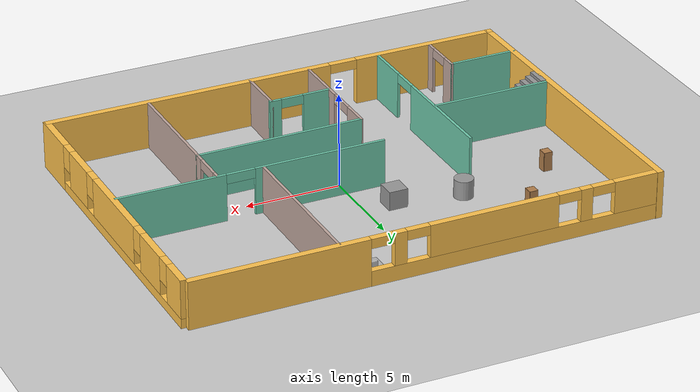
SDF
<sdf version="1.4">
 <world name="default">
  <include><uri>model://sun</uri></include>
  <include><uri>model://ground_plane</uri></include>
  <physics type="ode">
   <real_time_update_rate>1000.0</real_time_update_rate>
   <max_step_size>0.001</max_step_size>
   <real_time_factor>1</real_time_factor>
   <ode>
    <solver>
     <type>quick</type>
     <iters>150</iters>
     <precon_iters>0</precon_iters>
     <sor>1.400000</sor>
     <use_dynamic_moi_rescaling>1</use_dynamic_moi_rescaling>
    </solver>
    <constraints>
     <cfm>0.00001</cfm>
     <erp>0.2</erp>
     <contact_max_correcting_vel>2000.000000</contact_max_correcting_vel>
     <contact_surface_layer>0.01000</contact_surface_layer>
    </constraints>
   </ode>
  </physics>
  <scene><ambient>0.4 0.4 0.4 1</ambient><background>0.7 0.7 0.7 1</background><shadows>false</shadows></scene>
  <include><uri>model://Building</uri></include>
  <include>
   <name>Lsahpedsofa1</name>
   <pose>1.818159 8.511688 0 0 0 0</pose>
   <uri>model://waitingseat</uri>
  </include>
  <model name="unit_box">
   <pose>-1.58816 2.88343 0.5 0 -0 0</pose>
   <link name="link">
    <inertial>
     <mass>1</mass>
     <inertia>
      <ixx>0.166667</ixx>
      <ixy>0</ixy>
      <ixz>0</ixz>
      <iyy>0.166667</iyy>
      <iyz>0</iyz>
      <izz>0.166667</izz>
     </inertia>
    </inertial>
    <collision name="collision"><geometry><box><size>1 1 1</size></box></geometry></collision>
    <visual name="visual">
     <geometry><box><size>1 1 1</size></box></geometry>
     <material>
      <script><name>Gazebo/Grey</name><uri>file://media/materials/scripts/gazebo.material</uri></script>
     </material>
    </visual>
   </link>
  </model>
  <model name="unit_cylinder">
   <pose>-5.03093 3.57637 0.5 0 -0 0</pose>
   <link name="link">
    <inertial>
     <mass>1</mass>
     <inertia><ixx>0.145833</ixx><ixy>0</ixy><ixz>0</ixz><iyy>0.145833</iyy><iyz>0</iyz><izz>0.125</izz></inertia>
    </inertial>
    <collision name="collision">
     <geometry><cylinder><radius>0.5</radius><length>1</length></cylinder></geometry>
    </collision>
    <visual name="visual">
     <geometry><cylinder><radius>0.5</radius><length>1</length></cylinder></geometry>
     <material>
      <script><name>Gazebo/Grey</name><uri>file://media/materials/scripts/gazebo.material</uri></script>
     </material>
    </visual>
   </link>
  </model>
  <model name="cabinet">
   <static>1</static>
   <link name="cabinet_bottom_plate">
    <inertial>
     <pose>0 0 -1 0 -0 0</pose>
     <inertia><ixx>2.05</ixx><ixy>0</ixy><ixz>0</ixz><iyy>2.05</iyy><iyz>0</iyz><izz>2.05</izz></inertia>
     <mass>25</mass>
    </inertial>
    <collision name="cabinet_bottom_plate_geom">
     <pose>0 0 0.01 0 -0 0</pose>
     <geometry><box><size>0.45 0.45 0.02</size></box></geometry>
    </collision>
    <visual name="cabinet_bottom_plate_geom_visual">
     <pose>0 0 0.01 0 -0 0</pose>
     <geometry><box><size>0.45 0.45 0.02</size></box></geometry>
     <material>
      <script><uri>file://media/materials/scripts/gazebo.material</uri><name>Gazebo/Wood</name></script>
     </material>
    </visual>
    <collision name="cabinet_bottom_plate_geom_cabinet_back_plate">
     <pose>0.235 0 0.51 0 -0 0</pose>
     <geometry><box><size>0.02 0.45 1.02</size></box></geometry>
    </collision>
    <visual name="cabinet_bottom_plate_geom_cabinet_back_plate_visual">
     <pose>0.235 0 0.51 0 -0 0</pose>
     <geometry><box><size>0.02 0.45 1.02</size></box></geometry>
     <material>
      <script><uri>file://media/materials/scripts/gazebo.material</uri><name>Gazebo/Wood</name></script>
     </material>
    </visual>
    <collision name="cabinet_bottom_plate_geom_cabinet_left_plate">
     <pose>0 0.235 0.51 0 -0 0</pose>
     <geometry><box><size>0.45 0.02 1.02</size></box></geometry>
    </collision>
    <visual name="cabinet_bottom_plate_geom_cabinet_left_plate_visual">
     <pose>0 0.235 0.51 0 -0 0</pose>
     <geometry><box><size>0.45 0.02 1.02</size></box></geometry>
     <material>
      <script><uri>file://media/materials/scripts/gazebo.material</uri><name>Gazebo/Wood</name></script>
     </material>
    </visual>
    <collision name="cabinet_bottom_plate_geom_cabinet_middle_plate">
     <pose>0 0 0.51 0 -0 0</pose>
     <geometry><box><size>0.45 0.45 0.02</size></box></geometry>
    </collision>
    <visual name="cabinet_bottom_plate_geom_cabinet_middle_plate_visual">
     <pose>0 0 0.51 0 -0 0</pose>
     <geometry><box><size>0.45 0.45 0.02</size></box></geometry>
     <material>
      <script><uri>file://media/materials/scripts/gazebo.material</uri><name>Gazebo/Wood</name></script>
     </material>
    </visual>
    <collision name="cabinet_bottom_plate_geom_cabinet_right_plate">
     <pose>0 -0.235 0.51 0 -0 0</pose>
     <geometry><box><size>0.45 0.02 1.02</size></box></geometry>
    </collision>
    <visual name="cabinet_bottom_plate_geom_cabinet_right_plate_visual">
     <pose>0 -0.235 0.51 0 -0 0</pose>
     <geometry><box><size>0.45 0.02 1.02</size></box></geometry>
     <material>
      <script><uri>file://media/materials/scripts/gazebo.material</uri><name>Gazebo/Wood</name></script>
     </material>
    </visual>
    <collision name="cabinet_bottom_plate_geom_cabinet_top_plate">
     <pose>0 0 1.01 0 -0 0</pose>
     <geometry><box><size>0.45 0.45 0.02</size></box></geometry>
    </collision>
    <visual name="cabinet_bottom_plate_geom_cabinet_top_plate_visual">
     <pose>0 0 1.01 0 -0 0</pose>
     <geometry><box><size>0.45 0.45 0.02</size></box></geometry>
     <material>
      <script><uri>file://media/materials/scripts/gazebo.material</uri><name>Gazebo/Wood</name></script>
     </material>
    </visual>
   </link>
   <pose>-7.45917 6.0449 0 0 -0 0</pose>
  </model>
  <model name="cabinet_0">
   <static>1</static>
   <link name="cabinet_bottom_plate">
    <inertial>
     <pose>0 0 -1 0 -0 0</pose>
     <inertia><ixx>2.05</ixx><ixy>0</ixy><ixz>0</ixz><iyy>2.05</iyy><iyz>0</iyz><izz>2.05</izz></inertia>
     <mass>25</mass>
    </inertial>
    <collision name="cabinet_bottom_plate_geom">
     <pose>0 0 0.01 0 -0 0</pose>
     <geometry><box><size>0.45 0.45 0.02</size></box></geometry>
    </collision>
    <visual name="cabinet_bottom_plate_geom_visual">
     <pose>0 0 0.01 0 -0 0</pose>
     <geometry><box><size>0.45 0.45 0.02</size></box></geometry>
     <material>
      <script><uri>file://media/materials/scripts/gazebo.material</uri><name>Gazebo/Wood</name></script>
     </material>
    </visual>
    <collision name="cabinet_bottom_plate_geom_cabinet_back_plate">
     <pose>0.235 0 0.51 0 -0 0</pose>
     <geometry><box><size>0.02 0.45 1.02</size></box></geometry>
    </collision>
    <visual name="cabinet_bottom_plate_geom_cabinet_back_plate_visual">
     <pose>0.235 0 0.51 0 -0 0</pose>
     <geometry><box><size>0.02 0.45 1.02</size></box></geometry>
     <material>
      <script><uri>file://media/materials/scripts/gazebo.material</uri><name>Gazebo/Wood</name></script>
     </material>
    </visual>
    <collision name="cabinet_bottom_plate_geom_cabinet_left_plate">
     <pose>0 0.235 0.51 0 -0 0</pose>
     <geometry><box><size>0.45 0.02 1.02</size></box></geometry>
    </collision>
    <visual name="cabinet_bottom_plate_geom_cabinet_left_plate_visual">
     <pose>0 0.235 0.51 0 -0 0</pose>
     <geometry><box><size>0.45 0.02 1.02</size></box></geometry>
     <material>
      <script><uri>file://media/materials/scripts/gazebo.material</uri><name>Gazebo/Wood</name></script>
     </material>
    </visual>
    <collision name="cabinet_bottom_plate_geom_cabinet_middle_plate">
     <pose>0 0 0.51 0 -0 0</pose>
     <geometry><box><size>0.45 0.45 0.02</size></box></geometry>
    </collision>
    <visual name="cabinet_bottom_plate_geom_cabinet_middle_plate_visual">
     <pose>0 0 0.51 0 -0 0</pose>
     <geometry><box><size>0.45 0.45 0.02</size></box></geometry>
     <material>
      <script><uri>file://media/materials/scripts/gazebo.material</uri><name>Gazebo/Wood</name></script>
     </material>
    </visual>
    <collision name="cabinet_bottom_plate_geom_cabinet_right_plate">
     <pose>0 -0.235 0.51 0 -0 0</pose>
     <geometry><box><size>0.45 0.02 1.02</size></box></geometry>
    </collision>
    <visual name="cabinet_bottom_plate_geom_cabinet_right_plate_visual">
     <pose>0 -0.235 0.51 0 -0 0</pose>
     <geometry><box><size>0.45 0.02 1.02</size></box></geometry>
     <material>
      <script><uri>file://media/materials/scripts/gazebo.material</uri><name>Gazebo/Wood</name></script>
     </material>
    </visual>
    <collision name="cabinet_bottom_plate_geom_cabinet_top_plate">
     <pose>0 0 1.01 0 -0 0</pose>
     <geometry><box><size>0.45 0.45 0.02</size></box></geometry>
    </collision>
    <visual name="cabinet_bottom_plate_geom_cabinet_top_plate_visual">
     <pose>0 0 1.01 0 -0 0</pose>
     <geometry><box><size>0.45 0.45 0.02</size></box></geometry>
     <material>
      <script><uri>file://media/materials/scripts/gazebo.material</uri><name>Gazebo/Wood</name></script>
     </material>
    </visual>
   </link>
   <pose>-10.0246 2.8108 0 0 -0 0</pose>
  </model>
 </world>
</sdf>

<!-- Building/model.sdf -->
<sdf version='1.6'>
  <model name='Building'>
    <pose frame=''>-0.168381 0.74213 0 0 -0 0</pose>
    <link name='Stairs_0'>
      <visual name='Stairs_0_Visual_0'>
        <pose frame=''>-7.89562 -2.83855 0.083333 0 -0 -1.5708</pose>
        <geometry>
          <box>
            <size>1.1578 0.296455 0.166667</size>
          </box>
        </geometry>
        <material>
          <script>
            <uri>file://media/materials/scripts/gazebo.material</uri>
            <name>Gazebo/Grey</name>
          </script>
          <ambient>1 1 1 1</ambient>
        </material>
        <meta>
          <layer>0</layer>
        </meta>
      </visual>
      <collision name='Stairs_0_Collision_0'>
        <geometry>
          <box>
            <size>1.1578 0.296455 0.166667</size>
          </box>
        </geometry>
        <pose frame=''>-7.89562 -2.83855 0.083333 0 -0 -1.5708</pose>
      </collision>
      <visual name='Stairs_0_Visual_1'>
        <pose frame=''>-8.19208 -2.83855 0.25 0 -0 -1.5708</pose>
        <geometry>
          <box>
            <size>1.1578 0.296455 0.166667</size>
          </box>
        </geometry>
        <material>
          <script>
            <uri>file://media/materials/scripts/gazebo.material</uri>
            <name>Gazebo/Grey</name>
          </script>
          <ambient>1 1 1 1</ambient>
        </material>
        <meta>
          <layer>0</layer>
        </meta>
      </visual>
      <collision name='Stairs_0_Collision_1'>
        <geometry>
          <box>
            <size>1.1578 0.296455 0.166667</size>
          </box>
        </geometry>
        <pose frame=''>-8.19208 -2.83855 0.25 0 -0 -1.5708</pose>
      </collision>
      <visual name='Stairs_0_Visual_2'>
        <pose frame=''>-8.48853 -2.83855 0.416667 0 -0 -1.5708</pose>
        <geometry>
          <box>
            <size>1.1578 0.296455 0.166667</size>
          </box>
        </geometry>
        <material>
          <script>
            <uri>file://media/materials/scripts/gazebo.material</uri>
            <name>Gazebo/Grey</name>
          </script>
          <ambient>1 1 1 1</ambient>
        </material>
        <meta>
          <layer>0</layer>
        </meta>
      </visual>
      <collision name='Stairs_0_Collision_2'>
        <geometry>
          <box>
            <size>1.1578 0.296455 0.166667</size>
          </box>
        </geometry>
        <pose frame=''>-8.48853 -2.83855 0.416667 0 -0 -1.5708</pose>
      </collision>
      <visual name='Stairs_0_Visual_3'>
        <pose frame=''>-8.78499 -2.83855 0.583333 0 -0 -1.5708</pose>
        <geometry>
          <box>
            <size>1.1578 0.296455 0.166667</size>
          </box>
        </geometry>
        <material>
          <script>
            <uri>file://media/materials/scripts/gazebo.material</uri>
            <name>Gazebo/Grey</name>
          </script>
          <ambient>1 1 1 1</ambient>
        </material>
        <meta>
          <layer>0</layer>
        </meta>
      </visual>
      <collision name='Stairs_0_Collision_3'>
        <geometry>
          <box>
            <size>1.1578 0.296455 0.166667</size>
          </box>
        </geometry>
        <pose frame=''>-8.78499 -2.83855 0.583333 0 -0 -1.5708</pose>
      </collision>
      <visual name='Stairs_0_Visual_4'>
        <pose frame=''>-9.08144 -2.83855 0.75 0 -0 -1.5708</pose>
        <geometry>
          <box>
            <size>1.1578 0.296455 0.166667</size>
          </box>
        </geometry>
        <material>
          <script>
            <uri>file://media/materials/scripts/gazebo.material</uri>
            <name>Gazebo/Grey</name>
          </script>
          <ambient>1 1 1 1</ambient>
        </material>
        <meta>
          <layer>0</layer>
        </meta>
      </visual>
      <collision name='Stairs_0_Collision_4'>
        <geometry>
          <box>
            <size>1.1578 0.296455 0.166667</size>
          </box>
        </geometry>
        <pose frame=''>-9.08144 -2.83855 0.75 0 -0 -1.5708</pose>
      </collision>
      <visual name='Stairs_0_Visual_5'>
        <pose frame=''>-9.3779 -2.83855 0.916667 0 -0 -1.5708</pose>
        <geometry>
          <box>
            <size>1.1578 0.296455 0.166667</size>
          </box>
        </geometry>
        <material>
          <script>
            <uri>file://media/materials/scripts/gazebo.material</uri>
            <name>Gazebo/Grey</name>
          </script>
          <ambient>1 1 1 1</ambient>
        </material>
        <meta>
          <layer>0</layer>
        </meta>
      </visual>
      <collision name='Stairs_0_Collision_5'>
        <geometry>
          <box>
            <size>1.1578 0.296455 0.166667</size>
          </box>
        </geometry>
        <pose frame=''>-9.3779 -2.83855 0.916667 0 -0 -1.5708</pose>
      </collision>
      <visual name='Stairs_0_Visual_6'>
        <pose frame=''>-9.67435 -2.83855 1.08333 0 -0 -1.5708</pose>
        <geometry>
          <box>
            <size>1.1578 0.296455 0.166667</size>
          </box>
        </geometry>
        <material>
          <script>
            <uri>file://media/materials/scripts/gazebo.material</uri>
            <name>Gazebo/Grey</name>
          </script>
          <ambient>1 1 1 1</ambient>
        </material>
        <meta>
          <layer>0</layer>
        </meta>
      </visual>
      <collision name='Stairs_0_Collision_6'>
        <geometry>
          <box>
            <size>1.1578 0.296455 0.166667</size>
          </box>
        </geometry>
        <pose frame=''>-9.67435 -2.83855 1.08333 0 -0 -1.5708</pose>
      </collision>
      <visual name='Stairs_0_Visual_7'>
        <pose frame=''>-9.97081 -2.83855 1.25 0 -0 -1.5708</pose>
        <geometry>
          <box>
            <size>1.1578 0.296455 0.166667</size>
          </box>
        </geometry>
        <material>
          <script>
            <uri>file://media/materials/scripts/gazebo.material</uri>
            <name>Gazebo/Grey</name>
          </script>
          <ambient>1 1 1 1</ambient>
        </material>
        <meta>
          <layer>0</layer>
        </meta>
      </visual>
      <collision name='Stairs_0_Collision_7'>
        <geometry>
          <box>
            <size>1.1578 0.296455 0.166667</size>
          </box>
        </geometry>
        <pose frame=''>-9.97081 -2.83855 1.25 0 -0 -1.5708</pose>
      </collision>
      <visual name='Stairs_0_Visual_8'>
        <pose frame=''>-10.2673 -2.83855 1.41667 0 -0 -1.5708</pose>
        <geometry>
          <box>
            <size>1.1578 0.296455 0.166667</size>
          </box>
        </geometry>
        <material>
          <script>
            <uri>file://media/materials/scripts/gazebo.material</uri>
            <name>Gazebo/Grey</name>
          </script>
          <ambient>1 1 1 1</ambient>
        </material>
        <meta>
          <layer>0</layer>
        </meta>
      </visual>
      <collision name='Stairs_0_Collision_8'>
        <geometry>
          <box>
            <size>1.1578 0.296455 0.166667</size>
          </box>
        </geometry>
        <pose frame=''>-10.2673 -2.83855 1.41667 0 -0 -1.5708</pose>
      </collision>
      <visual name='Stairs_0_Visual_9'>
        <pose frame=''>-10.5637 -2.83855 1.58333 0 -0 -1.5708</pose>
        <geometry>
          <box>
            <size>1.1578 0.296455 0.166667</size>
          </box>
        </geometry>
        <material>
          <script>
            <uri>file://media/materials/scripts/gazebo.material</uri>
            <name>Gazebo/Grey</name>
          </script>
          <ambient>1 1 1 1</ambient>
        </material>
        <meta>
          <layer>0</layer>
        </meta>
      </visual>
      <collision name='Stairs_0_Collision_9'>
        <geometry>
          <box>
            <size>1.1578 0.296455 0.166667</size>
          </box>
        </geometry>
        <pose frame=''>-10.5637 -2.83855 1.58333 0 -0 -1.5708</pose>
      </collision>
      <visual name='Stairs_0_Visual_10'>
        <pose frame=''>-10.8602 -2.83855 1.75 0 -0 -1.5708</pose>
        <geometry>
          <box>
            <size>1.1578 0.296455 0.166667</size>
          </box>
        </geometry>
        <material>
          <script>
            <uri>file://media/materials/scripts/gazebo.material</uri>
            <name>Gazebo/Grey</name>
          </script>
          <ambient>1 1 1 1</ambient>
        </material>
        <meta>
          <layer>0</layer>
        </meta>
      </visual>
      <collision name='Stairs_0_Collision_10'>
        <geometry>
          <box>
            <size>1.1578 0.296455 0.166667</size>
          </box>
        </geometry>
        <pose frame=''>-10.8602 -2.83855 1.75 0 -0 -1.5708</pose>
      </collision>
      <visual name='Stairs_0_Visual_11'>
        <pose frame=''>-11.1566 -2.83855 1.91667 0 -0 -1.5708</pose>
        <geometry>
          <box>
            <size>1.1578 0.296455 0.166667</size>
          </box>
        </geometry>
        <material>
          <script>
            <uri>file://media/materials/scripts/gazebo.material</uri>
            <name>Gazebo/Grey</name>
          </script>
          <ambient>1 1 1 1</ambient>
        </material>
        <meta>
          <layer>0</layer>
        </meta>
      </visual>
      <collision name='Stairs_0_Collision_11'>
        <geometry>
          <box>
            <size>1.1578 0.296455 0.166667</size>
          </box>
        </geometry>
        <pose frame=''>-11.1566 -2.83855 1.91667 0 -0 -1.5708</pose>
      </collision>
      <visual name='Stairs_0_Visual_12'>
        <pose frame=''>-11.4531 -2.83855 2.08333 0 -0 -1.5708</pose>
        <geometry>
          <box>
            <size>1.1578 0.296455 0.166667</size>
          </box>
        </geometry>
        <material>
          <script>
            <uri>file://media/materials/scripts/gazebo.material</uri>
            <name>Gazebo/Grey</name>
          </script>
          <ambient>1 1 1 1</ambient>
        </material>
        <meta>
          <layer>0</layer>
        </meta>
      </visual>
      <collision name='Stairs_0_Collision_12'>
        <geometry>
          <box>
            <size>1.1578 0.296455 0.166667</size>
          </box>
        </geometry>
        <pose frame=''>-11.4531 -2.83855 2.08333 0 -0 -1.5708</pose>
      </collision>
      <visual name='Stairs_0_Visual_13'>
        <pose frame=''>-11.7495 -2.83855 2.25 0 -0 -1.5708</pose>
        <geometry>
          <box>
            <size>1.1578 0.296455 0.166667</size>
          </box>
        </geometry>
        <material>
          <script>
            <uri>file://media/materials/scripts/gazebo.material</uri>
            <name>Gazebo/Grey</name>
          </script>
          <ambient>1 1 1 1</ambient>
        </material>
        <meta>
          <layer>0</layer>
        </meta>
      </visual>
      <collision name='Stairs_0_Collision_13'>
        <geometry>
          <box>
            <size>1.1578 0.296455 0.166667</size>
          </box>
        </geometry>
        <pose frame=''>-11.7495 -2.83855 2.25 0 -0 -1.5708</pose>
      </collision>
      <visual name='Stairs_0_Visual_14'>
        <pose frame=''>-12.046 -2.83855 2.41667 0 -0 -1.5708</pose>
        <geometry>
          <box>
            <size>1.1578 0.296455 0.166667</size>
          </box>
        </geometry>
        <material>
          <script>
            <uri>file://media/materials/scripts/gazebo.material</uri>
            <name>Gazebo/Grey</name>
          </script>
          <ambient>1 1 1 1</ambient>
        </material>
        <meta>
          <layer>0</layer>
        </meta>
      </visual>
      <collision name='Stairs_0_Collision_14'>
        <geometry>
          <box>
            <size>1.1578 0.296455 0.166667</size>
          </box>
        </geometry>
        <pose frame=''>-12.046 -2.83855 2.41667 0 -0 -1.5708</pose>
      </collision>
    </link>
    <link name='Wall_0'>
      <pose frame=''>-0.115061 8.675 0 0 -0 3.14159</pose>
      <visual name='Wall_0_Visual_0'>
        <pose frame=''>-7.77268 0 1.25 0 -0 0</pose>
        <geometry>
          <box>
            <size>9.20463 0.35 2.5</size>
          </box>
        </geometry>
        <material>
          <script>
            <uri>file://media/materials/scripts/gazebo.material</uri>
            <name>Gazebo/Grey</name>
          </script>
          <ambient>1 0.764706 0.305882 1</ambient>
        </material>
        <meta>
          <layer>0</layer>
        </meta>
      </visual>
      <collision name='Wall_0_Collision_0'>
        <geometry>
          <box>
            <size>9.20463 0.35 2.5</size>
          </box>
        </geometry>
        <pose frame=''>-7.77268 0 1.25 0 -0 0</pose>
      </collision>
      <visual name='Wall_0_Visual_1'>
        <pose frame=''>4.60232 0 0.4 0 -0 0</pose>
        <geometry>
          <box>
            <size>15.5454 0.35 0.8</size>
          </box>
        </geometry>
        <material>
          <script>
            <uri>file://media/materials/scripts/gazebo.material</uri>
            <name>Gazebo/Grey</name>
          </script>
          <ambient>1 0.764706 0.305882 1</ambient>
        </material>
        <meta>
          <layer>0</layer>
        </meta>
      </visual>
      <collision name='Wall_0_Collision_1'>
        <geometry>
          <box>
            <size>15.5454 0.35 0.8</size>
          </box>
        </geometry>
        <pose frame=''>4.60232 0 0.4 0 -0 0</pose>
      </collision>
      <visual name='Wall_0_Visual_2'>
        <pose frame=''>-1.64984 0 1.65 0 -0 0</pose>
        <geometry>
          <box>
            <size>0.641045 0.35 1.7</size>
          </box>
        </geometry>
        <material>
          <script>
            <uri>file://media/materials/scripts/gazebo.material</uri>
            <name>Gazebo/Grey</name>
          </script>
          <ambient>1 0.764706 0.305882 1</ambient>
        </material>
        <meta>
          <layer>0</layer>
        </meta>
      </visual>
      <collision name='Wall_0_Collision_2'>
        <geometry>
          <box>
            <size>0.641045 0.35 1.7</size>
          </box>
        </geometry>
        <pose frame=''>-1.64984 0 1.65 0 -0 0</pose>
      </collision>
      <visual name='Wall_0_Visual_3'>
        <pose frame=''>3.28154 0 1.65 0 -0 0</pose>
        <geometry>
          <box>
            <size>6.82172 0.35 1.7</size>
          </box>
        </geometry>
        <material>
          <script>
            <uri>file://media/materials/scripts/gazebo.material</uri>
            <name>Gazebo/Grey</name>
          </script>
          <ambient>1 0.764706 0.305882 1</ambient>
        </material>
        <meta>
          <layer>0</layer>
        </meta>
      </visual>
      <collision name='Wall_0_Collision_3'>
        <geometry>
          <box>
            <size>6.82172 0.35 1.7</size>
          </box>
        </geometry>
        <pose frame=''>3.28154 0 1.65 0 -0 0</pose>
      </collision>
      <visual name='Wall_0_Visual_4'>
        <pose frame=''>8.20913 0 1.65 0 -0 0</pose>
        <geometry>
          <box>
            <size>0.633451 0.35 1.7</size>
          </box>
        </geometry>
        <material>
          <script>
            <uri>file://media/materials/scripts/gazebo.material</uri>
            <name>Gazebo/Grey</name>
          </script>
          <ambient>1 0.764706 0.305882 1</ambient>
        </material>
        <meta>
          <layer>0</layer>
        </meta>
      </visual>
      <collision name='Wall_0_Collision_4'>
        <geometry>
          <box>
            <size>0.633451 0.35 1.7</size>
          </box>
        </geometry>
        <pose frame=''>8.20913 0 1.65 0 -0 0</pose>
      </collision>
      <visual name='Wall_0_Visual_5'>
        <pose frame=''>11.0504 0 1.65 0 -0 0</pose>
        <geometry>
          <box>
            <size>2.64915 0.35 1.7</size>
          </box>
        </geometry>
        <material>
          <script>
            <uri>file://media/materials/scripts/gazebo.material</uri>
            <name>Gazebo/Grey</name>
          </script>
          <ambient>1 0.764706 0.305882 1</ambient>
        </material>
        <meta>
          <layer>0</layer>
        </meta>
      </visual>
      <collision name='Wall_0_Collision_5'>
        <geometry>
          <box>
            <size>2.64915 0.35 1.7</size>
          </box>
        </geometry>
        <pose frame=''>11.0504 0 1.65 0 -0 0</pose>
      </collision>
      <visual name='Wall_0_Visual_6'>
        <pose frame=''>-2.57037 0 2.25 0 -0 0</pose>
        <geometry>
          <box>
            <size>1.2 0.35 0.5</size>
          </box>
        </geometry>
        <material>
          <script>
            <uri>file://media/materials/scripts/gazebo.material</uri>
            <name>Gazebo/Grey</name>
          </script>
          <ambient>1 0.764706 0.305882 1</ambient>
        </material>
        <meta>
          <layer>0</layer>
        </meta>
      </visual>
      <collision name='Wall_0_Collision_6'>
        <geometry>
          <box>
            <size>1.2 0.35 0.5</size>
          </box>
        </geometry>
        <pose frame=''>-2.57037 0 2.25 0 -0 0</pose>
      </collision>
      <visual name='Wall_0_Visual_7'>
        <pose frame=''>-0.729321 0 2.25 0 -0 0</pose>
        <geometry>
          <box>
            <size>1.2 0.35 0.5</size>
          </box>
        </geometry>
        <material>
          <script>
            <uri>file://media/materials/scripts/gazebo.material</uri>
            <name>Gazebo/Grey</name>
          </script>
          <ambient>1 0.764706 0.305882 1</ambient>
        </material>
        <meta>
          <layer>0</layer>
        </meta>
      </visual>
      <collision name='Wall_0_Collision_7'>
        <geometry>
          <box>
            <size>1.2 0.35 0.5</size>
          </box>
        </geometry>
        <pose frame=''>-0.729321 0 2.25 0 -0 0</pose>
      </collision>
      <visual name='Wall_0_Visual_8'>
        <pose frame=''>7.2924 0 2.25 0 -0 0</pose>
        <geometry>
          <box>
            <size>1.2 0.35 0.5</size>
          </box>
        </geometry>
        <material>
          <script>
            <uri>file://media/materials/scripts/gazebo.material</uri>
            <name>Gazebo/Grey</name>
          </script>
          <ambient>1 0.764706 0.305882 1</ambient>
        </material>
        <meta>
          <layer>0</layer>
        </meta>
      </visual>
      <collision name='Wall_0_Collision_8'>
        <geometry>
          <box>
            <size>1.2 0.35 0.5</size>
          </box>
        </geometry>
        <pose frame=''>7.2924 0 2.25 0 -0 0</pose>
      </collision>
      <visual name='Wall_0_Visual_9'>
        <pose frame=''>9.12585 0 2.25 0 -0 0</pose>
        <geometry>
          <box>
            <size>1.2 0.35 0.5</size>
          </box>
        </geometry>
        <material>
          <script>
            <uri>file://media/materials/scripts/gazebo.material</uri>
            <name>Gazebo/Grey</name>
          </script>
          <ambient>1 0.764706 0.305882 1</ambient>
        </material>
        <meta>
          <layer>0</layer>
        </meta>
      </visual>
      <collision name='Wall_0_Collision_9'>
        <geometry>
          <box>
            <size>1.2 0.35 0.5</size>
          </box>
        </geometry>
        <pose frame=''>9.12585 0 2.25 0 -0 0</pose>
      </collision>
    </link>
    <link name='Wall_1'>
      <collision name='Wall_1_Collision'>
        <geometry>
          <box>
            <size>17.7463 0.35 2.5</size>
          </box>
        </geometry>
        <pose frame=''>0 0 1.25 0 -0 0</pose>
      </collision>
      <visual name='Wall_1_Visual'>
        <pose frame=''>0 0 1.25 0 -0 0</pose>
        <geometry>
          <box>
            <size>17.7463 0.35 2.5</size>
          </box>
        </geometry>
        <material>
          <script>
            <uri>file://media/materials/scripts/gazebo.material</uri>
            <name>Gazebo/Grey</name>
          </script>
          <ambient>1 0.764706 0.305882 1</ambient>
        </material>
        <meta>
          <layer>0</layer>
        </meta>
      </visual>
      <pose frame=''>-12.3149 0 0 0 -0 -1.56812</pose>
    </link>
    <link name='Wall_10'>
      <collision name='Wall_10_Collision'>
        <geometry>
          <box>
            <size>8.99016 0.15 2.5</size>
          </box>
        </geometry>
        <pose frame=''>0 0 1.25 0 -0 0</pose>
      </collision>
      <visual name='Wall_10_Visual'>
        <pose frame=''>0 0 1.25 0 -0 0</pose>
        <geometry>
          <box>
            <size>8.99016 0.15 2.5</size>
          </box>
        </geometry>
        <material>
          <script>
            <uri>file://media/materials/scripts/gazebo.material</uri>
            <name>Gazebo/Grey</name>
          </script>
          <ambient>0.435294 0.796078 0.67451 1</ambient>
        </material>
        <meta>
          <layer>0</layer>
        </meta>
      </visual>
      <pose frame=''>2.57383 -2.37111 0 0 -0 0.012303</pose>
    </link>
    <link name='Wall_11'>
      <collision name='Wall_11_Collision'>
        <geometry>
          <box>
            <size>6.35877 0.15 2.5</size>
          </box>
        </geometry>
        <pose frame=''>0 0 1.25 0 -0 0</pose>
      </collision>
      <visual name='Wall_11_Visual'>
        <pose frame=''>0 0 1.25 0 -0 0</pose>
        <geometry>
          <box>
            <size>6.35877 0.15 2.5</size>
          </box>
        </geometry>
        <material>
          <script>
            <uri>file://media/materials/scripts/gazebo.material</uri>
            <name>Gazebo/Grey</name>
          </script>
          <ambient>0.760784 0.662745 0.627451 1</ambient>
        </material>
        <meta>
          <layer>0</layer>
        </meta>
      </visual>
      <pose frame=''>6.99883 -5.4211 0 0 -0 -1.5692</pose>
    </link>
    <link name='Wall_14'>
      <pose frame=''>5.19897 0.095021 0 0 -0 3.14159</pose>
      <visual name='Wall_14_Visual_0'>
        <pose frame=''>-4.22612 0 1.25 0 -0 0</pose>
        <geometry>
          <box>
            <size>5.74777 0.15 2.5</size>
          </box>
        </geometry>
        <material>
          <script>
            <uri>file://media/materials/scripts/gazebo.material</uri>
            <name>Gazebo/Grey</name>
          </script>
          <ambient>0.435294 0.796078 0.67451 1</ambient>
        </material>
        <meta>
          <layer>0</layer>
        </meta>
      </visual>
      <collision name='Wall_14_Collision_0'>
        <geometry>
          <box>
            <size>5.74777 0.15 2.5</size>
          </box>
        </geometry>
        <pose frame=''>-4.22612 0 1.25 0 -0 0</pose>
      </collision>
      <visual name='Wall_14_Visual_1'>
        <pose frame=''>3.62388 0 1.25 0 -0 0</pose>
        <geometry>
          <box>
            <size>6.95223 0.15 2.5</size>
          </box>
        </geometry>
        <material>
          <script>
            <uri>file://media/materials/scripts/gazebo.material</uri>
            <name>Gazebo/Grey</name>
          </script>
          <ambient>0.435294 0.796078 0.67451 1</ambient>
        </material>
        <meta>
          <layer>0</layer>
        </meta>
      </visual>
      <collision name='Wall_14_Collision_1'>
        <geometry>
          <box>
            <size>6.95223 0.15 2.5</size>
          </box>
        </geometry>
        <pose frame=''>3.62388 0 1.25 0 -0 0</pose>
      </collision>
      <visual name='Wall_14_Visual_2'>
        <pose frame=''>-0.602234 0 2.25 0 -0 0</pose>
        <geometry>
          <box>
            <size>1.5 0.15 0.5</size>
          </box>
        </geometry>
        <material>
          <script>
            <uri>file://media/materials/scripts/gazebo.material</uri>
            <name>Gazebo/Grey</name>
          </script>
          <ambient>0.435294 0.796078 0.67451 1</ambient>
        </material>
        <meta>
          <layer>0</layer>
        </meta>
      </visual>
      <collision name='Wall_14_Collision_2'>
        <geometry>
          <box>
            <size>1.5 0.15 0.5</size>
          </box>
        </geometry>
        <pose frame=''>-0.602234 0 2.25 0 -0 0</pose>
      </collision>
    </link>
    <link name='Wall_16'>
      <pose frame=''>6.99388 -1.15161 0 0 -0 1.5708</pose>
      <visual name='Wall_16_Visual_0'>
        <pose frame=''>-0.964185 0 1.25 0 -0 0</pose>
        <geometry>
          <box>
            <size>0.571629 0.15 2.5</size>
          </box>
        </geometry>
        <material>
          <script>
            <uri>file://media/materials/scripts/gazebo.material</uri>
            <name>Gazebo/Grey</name>
          </script>
          <ambient>0.760784 0.662745 0.627451 1</ambient>
        </material>
        <meta>
          <layer>0</layer>
        </meta>
      </visual>
      <collision name='Wall_16_Collision_0'>
        <geometry>
          <box>
            <size>0.571629 0.15 2.5</size>
          </box>
        </geometry>
        <pose frame=''>-0.964185 0 1.25 0 -0 0</pose>
      </collision>
      <visual name='Wall_16_Visual_1'>
        <pose frame=''>1.03581 0 1.25 0 -0 0</pose>
        <geometry>
          <box>
            <size>0.428371 0.15 2.5</size>
          </box>
        </geometry>
        <material>
          <script>
            <uri>file://media/materials/scripts/gazebo.material</uri>
            <name>Gazebo/Grey</name>
          </script>
          <ambient>0.760784 0.662745 0.627451 1</ambient>
        </material>
        <meta>
          <layer>0</layer>
        </meta>
      </visual>
      <collision name='Wall_16_Collision_1'>
        <geometry>
          <box>
            <size>0.428371 0.15 2.5</size>
          </box>
        </geometry>
        <pose frame=''>1.03581 0 1.25 0 -0 0</pose>
      </collision>
      <visual name='Wall_16_Visual_2'>
        <pose frame=''>0.071629 0 2.25 0 -0 0</pose>
        <geometry>
          <box>
            <size>1.5 0.15 0.5</size>
          </box>
        </geometry>
        <material>
          <script>
            <uri>file://media/materials/scripts/gazebo.material</uri>
            <name>Gazebo/Grey</name>
          </script>
          <ambient>0.760784 0.662745 0.627451 1</ambient>
        </material>
        <meta>
          <layer>0</layer>
        </meta>
      </visual>
      <collision name='Wall_16_Collision_2'>
        <geometry>
          <box>
            <size>1.5 0.15 0.5</size>
          </box>
        </geometry>
        <pose frame=''>0.071629 0 2.25 0 -0 0</pose>
      </collision>
    </link>
    <link name='Wall_18'>
      <collision name='Wall_18_Collision'>
        <geometry>
          <box>
            <size>8.5 0.15 2.5</size>
          </box>
        </geometry>
        <pose frame=''>0 0 1.25 0 -0 0</pose>
      </collision>
      <visual name='Wall_18_Visual'>
        <pose frame=''>0 0 1.25 0 -0 0</pose>
        <geometry>
          <box>
            <size>8.5 0.15 2.5</size>
          </box>
        </geometry>
        <material>
          <script>
            <uri>file://media/materials/scripts/gazebo.material</uri>
            <name>Gazebo/Grey</name>
          </script>
          <ambient>0.760784 0.662745 0.627451 1</ambient>
        </material>
        <meta>
          <layer>0</layer>
        </meta>
      </visual>
      <pose frame=''>4.60523 4.40654 0 0 -0 -1.5708</pose>
    </link>
    <link name='Wall_2'>
      <pose frame=''>-0.00707 -8.69813 0 0 -0 0</pose>
      <visual name='Wall_2_Visual_0'>
        <pose frame=''>-8.49265 0 1.25 0 -0 0</pose>
        <geometry>
          <box>
            <size>7.9338 0.35 2.5</size>
          </box>
        </geometry>
        <material>
          <script>
            <uri>file://media/materials/scripts/gazebo.material</uri>
            <name>Gazebo/Grey</name>
          </script>
          <ambient>1 0.764706 0.305882 1</ambient>
        </material>
        <meta>
          <layer>0</layer>
        </meta>
      </visual>
      <collision name='Wall_2_Collision_0'>
        <geometry>
          <box>
            <size>7.9338 0.35 2.5</size>
          </box>
        </geometry>
        <pose frame=''>-8.49265 0 1.25 0 -0 0</pose>
      </collision>
      <visual name='Wall_2_Visual_1'>
        <pose frame=''>4.7169 0 1.25 0 -0 0</pose>
        <geometry>
          <box>
            <size>15.4853 0.35 2.5</size>
          </box>
        </geometry>
        <material>
          <script>
            <uri>file://media/materials/scripts/gazebo.material</uri>
            <name>Gazebo/Grey</name>
          </script>
          <ambient>1 0.764706 0.305882 1</ambient>
        </material>
        <meta>
          <layer>0</layer>
        </meta>
      </visual>
      <collision name='Wall_2_Collision_1'>
        <geometry>
          <box>
            <size>15.4853 0.35 2.5</size>
          </box>
        </geometry>
        <pose frame=''>4.7169 0 1.25 0 -0 0</pose>
      </collision>
      <visual name='Wall_2_Visual_2'>
        <pose frame=''>-3.77575 0 2.25 0 -0 0</pose>
        <geometry>
          <box>
            <size>1.5 0.35 0.5</size>
          </box>
        </geometry>
        <material>
          <script>
            <uri>file://media/materials/scripts/gazebo.material</uri>
            <name>Gazebo/Grey</name>
          </script>
          <ambient>1 0.764706 0.305882 1</ambient>
        </material>
        <meta>
          <layer>0</layer>
        </meta>
      </visual>
      <collision name='Wall_2_Collision_2'>
        <geometry>
          <box>
            <size>1.5 0.35 0.5</size>
          </box>
        </geometry>
        <pose frame=''>-3.77575 0 2.25 0 -0 0</pose>
      </collision>
    </link>
    <link name='Wall_20'>
      <collision name='Wall_20_Collision'>
        <geometry>
          <box>
            <size>3.75 0.15 2.5</size>
          </box>
        </geometry>
        <pose frame=''>0 0 1.25 0 -0 0</pose>
      </collision>
      <visual name='Wall_20_Visual'>
        <pose frame=''>0 0 1.25 0 -0 0</pose>
        <geometry>
          <box>
            <size>3.75 0.15 2.5</size>
          </box>
        </geometry>
        <material>
          <script>
            <uri>file://media/materials/scripts/gazebo.material</uri>
            <name>Gazebo/Grey</name>
          </script>
          <ambient>0.435294 0.796078 0.67451 1</ambient>
        </material>
        <meta>
          <layer>0</layer>
        </meta>
      </visual>
      <pose frame=''>-10.5332 -6.03352 0 0 -0 0</pose>
    </link>
    <link name='Wall_21'>
      <pose frame=''>-8.7332 -7.33352 0 0 -0 -1.5708</pose>
      <visual name='Wall_21_Visual_0'>
        <pose frame=''>-0.95457 0 1.25 0 -0 0</pose>
        <geometry>
          <box>
            <size>0.840859 0.15 2.5</size>
          </box>
        </geometry>
        <material>
          <script>
            <uri>file://media/materials/scripts/gazebo.material</uri>
            <name>Gazebo/Grey</name>
          </script>
          <ambient>0.760784 0.662745 0.627451 1</ambient>
        </material>
        <meta>
          <layer>0</layer>
        </meta>
      </visual>
      <collision name='Wall_21_Collision_0'>
        <geometry>
          <box>
            <size>0.840859 0.15 2.5</size>
          </box>
        </geometry>
        <pose frame=''>-0.95457 0 1.25 0 -0 0</pose>
      </collision>
      <visual name='Wall_21_Visual_1'>
        <pose frame=''>1.02043 0 1.25 0 -0 0</pose>
        <geometry>
          <box>
            <size>0.709141 0.15 2.5</size>
          </box>
        </geometry>
        <material>
          <script>
            <uri>file://media/materials/scripts/gazebo.material</uri>
            <name>Gazebo/Grey</name>
          </script>
          <ambient>0.760784 0.662745 0.627451 1</ambient>
        </material>
        <meta>
          <layer>0</layer>
        </meta>
      </visual>
      <collision name='Wall_21_Collision_1'>
        <geometry>
          <box>
            <size>0.709141 0.15 2.5</size>
          </box>
        </geometry>
        <pose frame=''>1.02043 0 1.25 0 -0 0</pose>
      </collision>
      <visual name='Wall_21_Visual_2'>
        <pose frame=''>0.065859 0 2.25 0 -0 0</pose>
        <geometry>
          <box>
            <size>1.2 0.15 0.5</size>
          </box>
        </geometry>
        <material>
          <script>
            <uri>file://media/materials/scripts/gazebo.material</uri>
            <name>Gazebo/Grey</name>
          </script>
          <ambient>0.760784 0.662745 0.627451 1</ambient>
        </material>
        <meta>
          <layer>0</layer>
        </meta>
      </visual>
      <collision name='Wall_21_Collision_2'>
        <geometry>
          <box>
            <size>1.2 0.15 0.5</size>
          </box>
        </geometry>
        <pose frame=''>0.065859 0 2.25 0 -0 0</pose>
      </collision>
    </link>
    <link name='Wall_23'>
      <pose frame=''>-0.217782 -6.1063 0 0 -0 0</pose>
      <visual name='Wall_23_Visual_0'>
        <pose frame=''>-0.926955 0 1.25 0 -0 0</pose>
        <geometry>
          <box>
            <size>1.57905 0.15 2.5</size>
          </box>
        </geometry>
        <material>
          <script>
            <uri>file://media/materials/scripts/gazebo.material</uri>
            <name>Gazebo/Grey</name>
          </script>
          <ambient>0.435294 0.796078 0.67451 1</ambient>
        </material>
        <meta>
          <layer>0</layer>
        </meta>
      </visual>
      <collision name='Wall_23_Collision_0'>
        <geometry>
          <box>
            <size>1.57905 0.15 2.5</size>
          </box>
        </geometry>
        <pose frame=''>-0.926955 0 1.25 0 -0 0</pose>
      </collision>
      <visual name='Wall_23_Visual_1'>
        <pose frame=''>1.38953 0 1.25 0 -0 0</pose>
        <geometry>
          <box>
            <size>0.653909 0.15 2.5</size>
          </box>
        </geometry>
        <material>
          <script>
            <uri>file://media/materials/scripts/gazebo.material</uri>
            <name>Gazebo/Grey</name>
          </script>
          <ambient>0.435294 0.796078 0.67451 1</ambient>
        </material>
        <meta>
          <layer>0</layer>
        </meta>
      </visual>
      <collision name='Wall_23_Collision_1'>
        <geometry>
          <box>
            <size>0.653909 0.15 2.5</size>
          </box>
        </geometry>
        <pose frame=''>1.38953 0 1.25 0 -0 0</pose>
      </collision>
      <visual name='Wall_23_Visual_2'>
        <pose frame=''>0.462571 0 2.25 0 -0 0</pose>
        <geometry>
          <box>
            <size>1.2 0.15 0.5</size>
          </box>
        </geometry>
        <material>
          <script>
            <uri>file://media/materials/scripts/gazebo.material</uri>
            <name>Gazebo/Grey</name>
          </script>
          <ambient>0.435294 0.796078 0.67451 1</ambient>
        </material>
        <meta>
          <layer>0</layer>
        </meta>
      </visual>
      <collision name='Wall_23_Collision_2'>
        <geometry>
          <box>
            <size>1.2 0.15 0.5</size>
          </box>
        </geometry>
        <pose frame=''>0.462571 0 2.25 0 -0 0</pose>
      </collision>
    </link>
    <link name='Wall_24'>
      <collision name='Wall_24_Collision'>
        <geometry>
          <box>
            <size>2.75 0.15 2.5</size>
          </box>
        </geometry>
        <pose frame=''>0 0 1.25 0 -0 0</pose>
      </collision>
      <visual name='Wall_24_Visual'>
        <pose frame=''>0 0 1.25 0 -0 0</pose>
        <geometry>
          <box>
            <size>2.75 0.15 2.5</size>
          </box>
        </geometry>
        <material>
          <script>
            <uri>file://media/materials/scripts/gazebo.material</uri>
            <name>Gazebo/Grey</name>
          </script>
          <ambient>0.760784 0.662745 0.627451 1</ambient>
        </material>
        <meta>
          <layer>0</layer>
        </meta>
      </visual>
      <pose frame=''>1.37796 -7.4063 0 0 -0 -1.5708</pose>
    </link>
    <link name='Wall_3'>
      <pose frame=''>12.3387 -0.14813 0 0 -0 1.5708</pose>
      <visual name='Wall_3_Visual_0'>
        <pose frame=''>-7.33033 0 1.25 0 -0 0</pose>
        <geometry>
          <box>
            <size>2.78938 0.35 2.5</size>
          </box>
        </geometry>
        <material>
          <script>
            <uri>file://media/materials/scripts/gazebo.material</uri>
            <name>Gazebo/Grey</name>
          </script>
          <ambient>1 0.764706 0.305882 1</ambient>
        </material>
        <meta>
          <layer>0</layer>
        </meta>
      </visual>
      <collision name='Wall_3_Collision_0'>
        <geometry>
          <box>
            <size>2.78938 0.35 2.5</size>
          </box>
        </geometry>
        <pose frame=''>-7.33033 0 1.25 0 -0 0</pose>
      </collision>
      <visual name='Wall_3_Visual_1'>
        <pose frame=''>1.39469 0 0.25 0 -0 0</pose>
        <geometry>
          <box>
            <size>14.6607 0.35 0.5</size>
          </box>
        </geometry>
        <material>
          <script>
            <uri>file://media/materials/scripts/gazebo.material</uri>
            <name>Gazebo/Grey</name>
          </script>
          <ambient>1 0.764706 0.305882 1</ambient>
        </material>
        <meta>
          <layer>0</layer>
        </meta>
      </visual>
      <collision name='Wall_3_Collision_1'>
        <geometry>
          <box>
            <size>14.6607 0.35 0.5</size>
          </box>
        </geometry>
        <pose frame=''>1.39469 0 0.25 0 -0 0</pose>
      </collision>
      <visual name='Wall_3_Visual_2'>
        <pose frame=''>-3.98435 0 1.5 0 -0 0</pose>
        <geometry>
          <box>
            <size>2.30259 0.35 2</size>
          </box>
        </geometry>
        <material>
          <script>
            <uri>file://media/materials/scripts/gazebo.material</uri>
            <name>Gazebo/Grey</name>
          </script>
          <ambient>1 0.764706 0.305882 1</ambient>
        </material>
        <meta>
          <layer>0</layer>
        </meta>
      </visual>
      <collision name='Wall_3_Collision_2'>
        <geometry>
          <box>
            <size>2.30259 0.35 2</size>
          </box>
        </geometry>
        <pose frame=''>-3.98435 0 1.5 0 -0 0</pose>
      </collision>
      <visual name='Wall_3_Visual_3'>
        <pose frame=''>0.541586 0 1.5 0 -0 0</pose>
        <geometry>
          <box>
            <size>5.14929 0.35 2</size>
          </box>
        </geometry>
        <material>
          <script>
            <uri>file://media/materials/scripts/gazebo.material</uri>
            <name>Gazebo/Grey</name>
          </script>
          <ambient>1 0.764706 0.305882 1</ambient>
        </material>
        <meta>
          <layer>0</layer>
        </meta>
      </visual>
      <collision name='Wall_3_Collision_3'>
        <geometry>
          <box>
            <size>5.14929 0.35 2</size>
          </box>
        </geometry>
        <pose frame=''>0.541586 0 1.5 0 -0 0</pose>
      </collision>
      <visual name='Wall_3_Visual_4'>
        <pose frame=''>5.10323 0 1.5 0 -0 0</pose>
        <geometry>
          <box>
            <size>2.374 0.35 2</size>
          </box>
        </geometry>
        <material>
          <script>
            <uri>file://media/materials/scripts/gazebo.material</uri>
            <name>Gazebo/Grey</name>
          </script>
          <ambient>1 0.764706 0.305882 1</ambient>
        </material>
        <meta>
          <layer>0</layer>
        </meta>
      </visual>
      <collision name='Wall_3_Collision_4'>
        <geometry>
          <box>
            <size>2.374 0.35 2</size>
          </box>
        </geometry>
        <pose frame=''>5.10323 0 1.5 0 -0 0</pose>
      </collision>
      <visual name='Wall_3_Visual_5'>
        <pose frame=''>7.90763 0 1.5 0 -0 0</pose>
        <geometry>
          <box>
            <size>1.63479 0.35 2</size>
          </box>
        </geometry>
        <material>
          <script>
            <uri>file://media/materials/scripts/gazebo.material</uri>
            <name>Gazebo/Grey</name>
          </script>
          <ambient>1 0.764706 0.305882 1</ambient>
        </material>
        <meta>
          <layer>0</layer>
        </meta>
      </visual>
      <collision name='Wall_3_Collision_5'>
        <geometry>
          <box>
            <size>1.63479 0.35 2</size>
          </box>
        </geometry>
        <pose frame=''>7.90763 0 1.5 0 -0 0</pose>
      </collision>
      <visual name='Wall_3_Visual_6'>
        <pose frame=''>-5.53564 0 1.9 0 -0 0</pose>
        <geometry>
          <box>
            <size>0.8 0.35 1.2</size>
          </box>
        </geometry>
        <material>
          <script>
            <uri>file://media/materials/scripts/gazebo.material</uri>
            <name>Gazebo/Grey</name>
          </script>
          <ambient>1 0.764706 0.305882 1</ambient>
        </material>
        <meta>
          <layer>0</layer>
        </meta>
      </visual>
      <collision name='Wall_3_Collision_6'>
        <geometry>
          <box>
            <size>0.8 0.35 1.2</size>
          </box>
        </geometry>
        <pose frame=''>-5.53564 0 1.9 0 -0 0</pose>
      </collision>
      <visual name='Wall_3_Visual_7'>
        <pose frame=''>-2.43306 0 1.9 0 -0 0</pose>
        <geometry>
          <box>
            <size>0.8 0.35 1.2</size>
          </box>
        </geometry>
        <material>
          <script>
            <uri>file://media/materials/scripts/gazebo.material</uri>
            <name>Gazebo/Grey</name>
          </script>
          <ambient>1 0.764706 0.305882 1</ambient>
        </material>
        <meta>
          <layer>0</layer>
        </meta>
      </visual>
      <collision name='Wall_3_Collision_7'>
        <geometry>
          <box>
            <size>0.8 0.35 1.2</size>
          </box>
        </geometry>
        <pose frame=''>-2.43306 0 1.9 0 -0 0</pose>
      </collision>
      <visual name='Wall_3_Visual_8'>
        <pose frame=''>3.51623 0 1.9 0 -0 0</pose>
        <geometry>
          <box>
            <size>0.8 0.35 1.2</size>
          </box>
        </geometry>
        <material>
          <script>
            <uri>file://media/materials/scripts/gazebo.material</uri>
            <name>Gazebo/Grey</name>
          </script>
          <ambient>1 0.764706 0.305882 1</ambient>
        </material>
        <meta>
          <layer>0</layer>
        </meta>
      </visual>
      <collision name='Wall_3_Collision_8'>
        <geometry>
          <box>
            <size>0.8 0.35 1.2</size>
          </box>
        </geometry>
        <pose frame=''>3.51623 0 1.9 0 -0 0</pose>
      </collision>
      <visual name='Wall_3_Visual_9'>
        <pose frame=''>6.69023 0 1.9 0 -0 0</pose>
        <geometry>
          <box>
            <size>0.8 0.35 1.2</size>
          </box>
        </geometry>
        <material>
          <script>
            <uri>file://media/materials/scripts/gazebo.material</uri>
            <name>Gazebo/Grey</name>
          </script>
          <ambient>1 0.764706 0.305882 1</ambient>
        </material>
        <meta>
          <layer>0</layer>
        </meta>
      </visual>
      <collision name='Wall_3_Collision_9'>
        <geometry>
          <box>
            <size>0.8 0.35 1.2</size>
          </box>
        </geometry>
        <pose frame=''>6.69023 0 1.9 0 -0 0</pose>
      </collision>
    </link>
    <link name='Wall_5'>
      <pose frame=''>-5.77087 -3.46479 0 0 -0 -1.5708</pose>
      <visual name='Wall_5_Visual_0'>
        <pose frame=''>-2.03637 0 1.25 0 -0 0</pose>
        <geometry>
          <box>
            <size>6.42725 0.15 2.5</size>
          </box>
        </geometry>
        <material>
          <script>
            <uri>file://media/materials/scripts/gazebo.material</uri>
            <name>Gazebo/Grey</name>
          </script>
          <ambient>0.435294 0.796078 0.67451 1</ambient>
        </material>
        <meta>
          <layer>0</layer>
        </meta>
      </visual>
      <collision name='Wall_5_Collision_0'>
        <geometry>
          <box>
            <size>6.42725 0.15 2.5</size>
          </box>
        </geometry>
        <pose frame=''>-2.03637 0 1.25 0 -0 0</pose>
      </collision>
      <visual name='Wall_5_Visual_1'>
        <pose frame=''>3.96363 0 1.25 0 -0 0</pose>
        <geometry>
          <box>
            <size>2.57275 0.15 2.5</size>
          </box>
        </geometry>
        <material>
          <script>
            <uri>file://media/materials/scripts/gazebo.material</uri>
            <name>Gazebo/Grey</name>
          </script>
          <ambient>0.435294 0.796078 0.67451 1</ambient>
        </material>
        <meta>
          <layer>0</layer>
        </meta>
      </visual>
      <collision name='Wall_5_Collision_1'>
        <geometry>
          <box>
            <size>2.57275 0.15 2.5</size>
          </box>
        </geometry>
        <pose frame=''>3.96363 0 1.25 0 -0 0</pose>
      </collision>
      <visual name='Wall_5_Visual_2'>
        <pose frame=''>1.92725 0 2.25 0 -0 0</pose>
        <geometry>
          <box>
            <size>1.5 0.15 0.5</size>
          </box>
        </geometry>
        <material>
          <script>
            <uri>file://media/materials/scripts/gazebo.material</uri>
            <name>Gazebo/Grey</name>
          </script>
          <ambient>0.435294 0.796078 0.67451 1</ambient>
        </material>
        <meta>
          <layer>0</layer>
        </meta>
      </visual>
      <collision name='Wall_5_Collision_2'>
        <geometry>
          <box>
            <size>1.5 0.15 0.5</size>
          </box>
        </geometry>
        <pose frame=''>1.92725 0 2.25 0 -0 0</pose>
      </collision>
    </link>
    <link name='Wall_7'>
      <collision name='Wall_7_Collision'>
        <geometry>
          <box>
            <size>6.5 0.15 2.5</size>
          </box>
        </geometry>
        <pose frame=''>0 0 1.25 0 -0 0</pose>
      </collision>
      <visual name='Wall_7_Visual'>
        <pose frame=''>0 0 1.25 0 -0 0</pose>
        <geometry>
          <box>
            <size>6.5 0.15 2.5</size>
          </box>
        </geometry>
        <material>
          <script>
            <uri>file://media/materials/scripts/gazebo.material</uri>
            <name>Gazebo/Grey</name>
          </script>
          <ambient>0.435294 0.796078 0.67451 1</ambient>
        </material>
        <meta>
          <layer>0</layer>
        </meta>
      </visual>
      <pose frame=''>-9.04138 -2.14013 0 0 -0 0</pose>
    </link>
    <link name='Wall_9'>
      <pose frame=''>-1.84623 -5.47549 0 0 -0 1.5708</pose>
      <visual name='Wall_9_Visual_0'>
        <pose frame=''>-1.53427 0 1.25 0 -0 0</pose>
        <geometry>
          <box>
            <size>3.18147 0.15 2.5</size>
          </box>
        </geometry>
        <material>
          <script>
            <uri>file://media/materials/scripts/gazebo.material</uri>
            <name>Gazebo/Grey</name>
          </script>
          <ambient>0.760784 0.662745 0.627451 1</ambient>
        </material>
        <meta>
          <layer>0</layer>
        </meta>
      </visual>
      <collision name='Wall_9_Collision_0'>
        <geometry>
          <box>
            <size>3.18147 0.15 2.5</size>
          </box>
        </geometry>
        <pose frame=''>-1.53427 0 1.25 0 -0 0</pose>
      </collision>
      <visual name='Wall_9_Visual_1'>
        <pose frame=''>2.34073 0 1.25 0 -0 0</pose>
        <geometry>
          <box>
            <size>1.56854 0.15 2.5</size>
          </box>
        </geometry>
        <material>
          <script>
            <uri>file://media/materials/scripts/gazebo.material</uri>
            <name>Gazebo/Grey</name>
          </script>
          <ambient>0.760784 0.662745 0.627451 1</ambient>
        </material>
        <meta>
          <layer>0</layer>
        </meta>
      </visual>
      <collision name='Wall_9_Collision_1'>
        <geometry>
          <box>
            <size>1.56854 0.15 2.5</size>
          </box>
        </geometry>
        <pose frame=''>2.34073 0 1.25 0 -0 0</pose>
      </collision>
      <visual name='Wall_9_Visual_2'>
        <pose frame=''>0.806465 0 2.25 0 -0 0</pose>
        <geometry>
          <box>
            <size>1.5 0.15 0.5</size>
          </box>
        </geometry>
        <material>
          <script>
            <uri>file://media/materials/scripts/gazebo.material</uri>
            <name>Gazebo/Grey</name>
          </script>
          <ambient>0.760784 0.662745 0.627451 1</ambient>
        </material>
        <meta>
          <layer>0</layer>
        </meta>
      </visual>
      <collision name='Wall_9_Collision_2'>
        <geometry>
          <box>
            <size>1.5 0.15 0.5</size>
          </box>
        </geometry>
        <pose frame=''>0.806465 0 2.25 0 -0 0</pose>
      </collision>
    </link>
    <static>1</static>
  </model>
</sdf>

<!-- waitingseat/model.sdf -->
<sdf version="1.6">
  <model name="waitingseat">
    <static>true</static>
    <link name="link">
      <collision name="collision">
        <geometry>
          <mesh>
            <uri>model://waitingseat/meshes/sofa.obj</uri>
          </mesh>
        </geometry>
      </collision>
      <visual name="visual">
        <geometry>
          <mesh>
            <uri>model://waitingseat/meshes/sofa.obj</uri>
          </mesh>
        </geometry>
      </visual>
    </link>
  </model>
</sdf>
